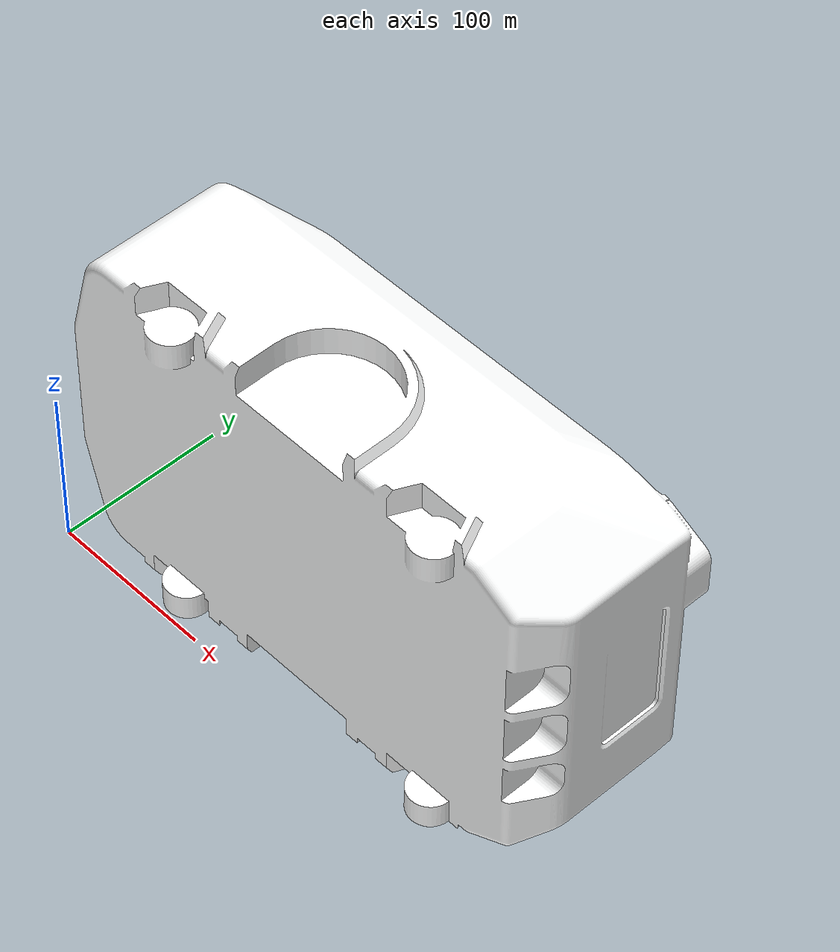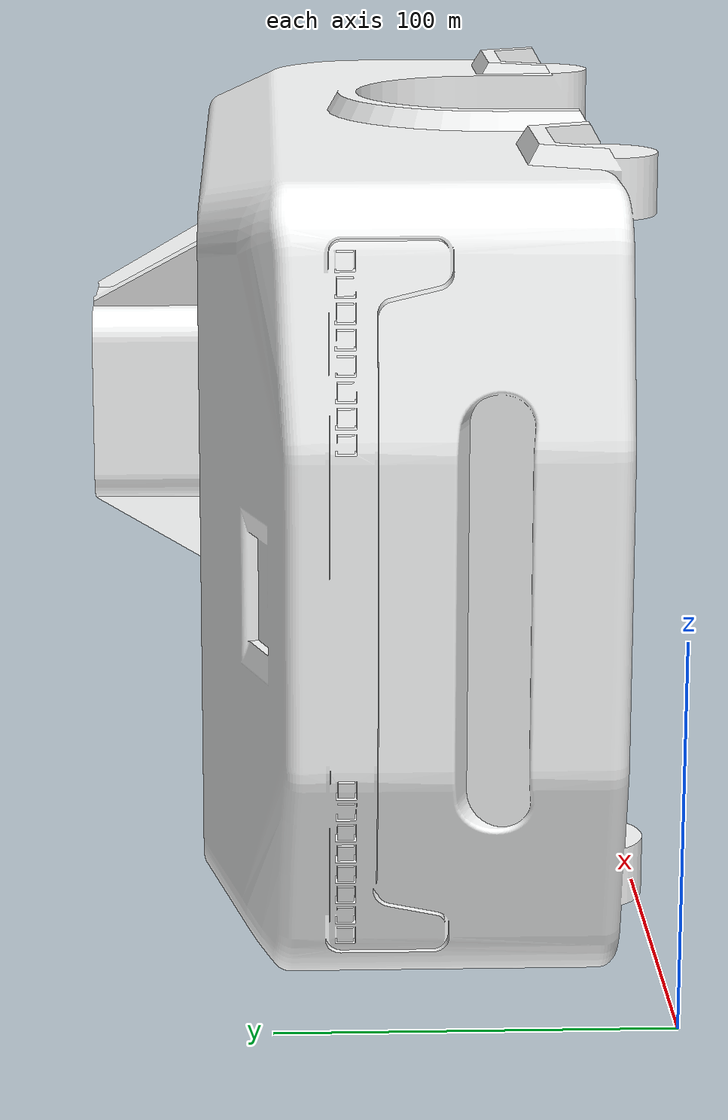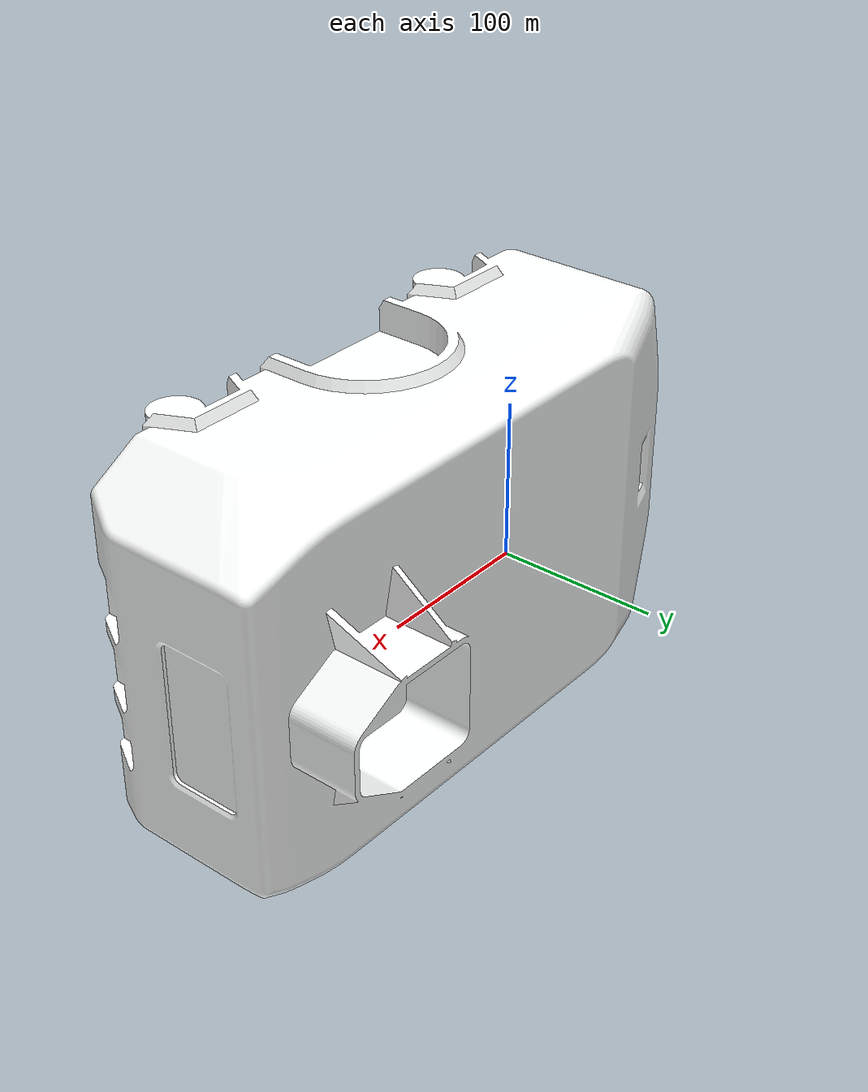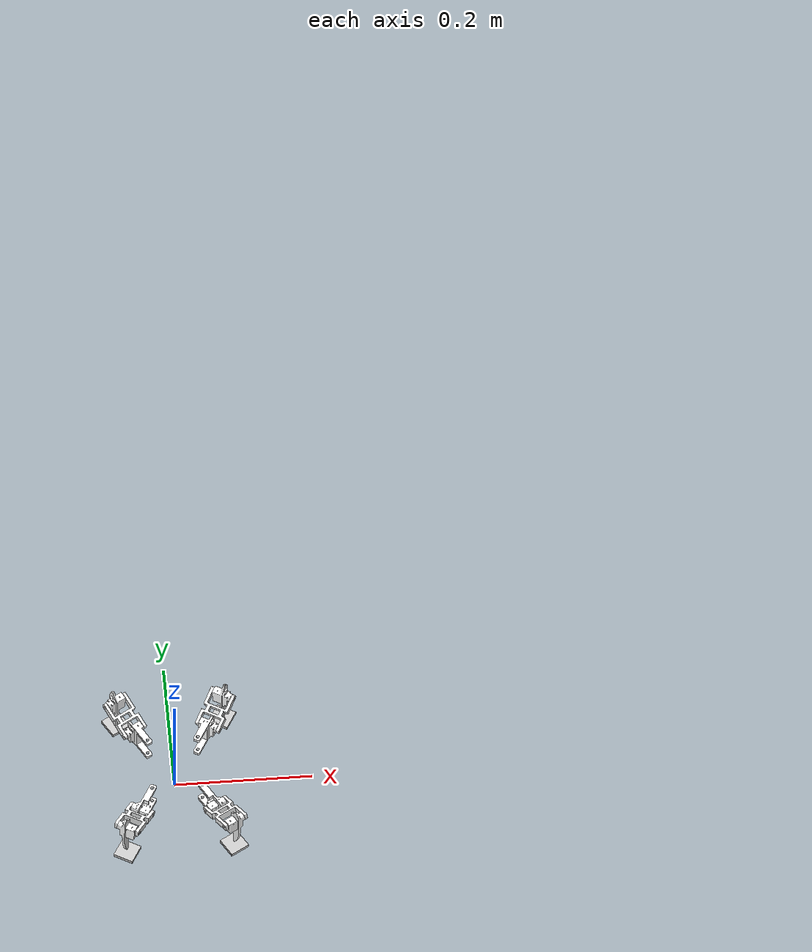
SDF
<?xml version="1.0" encoding="utf-8"?>
<sdf version='1.11'>
  <model name='peter1' canonical_link = 'body'>

    <frame name="lidar_frame" attached_to='body'>
          <pose>0 0 0.15 0 0 3.1415926535</pose>
    </frame>

    <frame name="camera_frame" attached_to='body'>
          <pose>0 0 0.05 0 0 3.1415926</pose>
    </frame>

    <link name='body'>
      <inertial>
        <pose>0.0022555536637576899 0.00133065518558914 0.043064731379226201 0 0 0</pose>
        <mass>0.063478029760084195</mass>
        <inertia>
          <ixx>7.9230379603712002e-05</ixx>
          <ixy>2.9482940315218001e-07</ixy>
          <ixz>-1.20685983267543e-08</ixz>
          <iyy>7.1253492093192099e-05</iyy>
          <iyz>1.2420643100907299e-08</iyz>
          <izz>0.00014631818171768199</izz>
        </inertia>
      </inertial>
      <collision name='body_collision'>
        <pose>0 0 0 0 0 0</pose>
        <geometry>
          <mesh>
            <scale>1 1 1</scale>
            <uri>model://description/meshes/body.STL</uri>
          </mesh>
        </geometry>
          <surface>
            <friction>
              <ode>
               <mu>1</mu>
               <mu2>1</mu2>
              </ode>
            </friction>
            <bounce/>
            <contact/>
          </surface>
      </collision>
      <visual name='body_visual'>
        <pose>0 0 0 0 0 0</pose>
        <geometry>
          <mesh>
            <scale>1 1 1</scale>
            <uri>model://description/meshes/body.STL</uri>
          </mesh>
        </geometry>
        <material>
          <diffuse>0.995098054 1 1 1</diffuse>
          <ambient>0.995098054 1 1 1</ambient>
        </material>
      </visual>

 <sensor name='gpu_lidar' type='gpu_lidar'>"
          <pose relative_to='lidar_frame'>0 0 0 0 0 0</pose>
          <topic>lidar_scan</topic>
          <update_rate>10</update_rate>
          <ray>
              <scan>
                  <horizontal>
                      <samples>720</samples>
                      <resolution>1</resolution>
                      <min_angle>-0.785</min_angle>
                      <max_angle>0.785</max_angle>
                  </horizontal>
                  <vertical>
                      <samples>1</samples>
                      <resolution>0.01</resolution>
                      <min_angle>0</min_angle>
                      <max_angle>0</max_angle>
                  </vertical>
              </scan>
              <range>
                  <min>0.05</min>
                  <max>10.0</max>
                  <resolution>0.01</resolution>
              </range>
          </ray>
          <always_on>1</always_on>
          <visualize>true</visualize>
      </sensor>
      <sensor name="boundingbox_camera" type="boundingbox_camera">
         <pose relative_to='camera_frame'>0 0 0 0 0 0</pose>
         <topic>boxes</topic>
         <camera>
           <box_type>2d</box_type>
           <horizontal_fov>1.047</horizontal_fov>
           <image>
             <width>1280</width>
             <height>720</height>
           </image>
           <clip>
             <near>0.1</near>
             <far>10</far>
           </clip>
         </camera>
         <always_on>1</always_on>
         <update_rate>30</update_rate>
         <visualize>true</visualize>
       </sensor>

    </link>

    <joint name='jlf1' type='revolute'>
      <pose relative_to='body'>-0.04 -0.04 0.04 -1.5708 5.5511151231257827e-17 -0.52359999999999995</pose>
      <parent>body</parent>
      <child>llf1</child>
      <axis>
        <xyz>0 1 0</xyz>
        <limit>
          <lower>-3.14</lower>
          <upper>3.14</upper>
          <effort>10</effort>
          <velocity>10</velocity>
        </limit>
        <dynamics>
          <spring_reference>0</spring_reference>
          <spring_stiffness>0</spring_stiffness>
        </dynamics>
      </axis>
    </joint>
    <link name='llf1'>
      <pose relative_to='jlf1'>0 0 0 0 0 0</pose>
      <inertial>
        <pose>0.00286542457 -0.001117447 -0.027575894 0 0 0</pose>
        <mass>0.012789728747716301</mass>
        <inertia>
          <ixx>2.8085225283823598e-06</ixx>
          <ixy>-1.22116927896592e-08</ixy>
          <ixz>-8.7286357197039904e-08</ixz>
          <iyy>1.9479276383099401e-06</iyy>
          <iyz>-2.2831986328942301e-08</iyz>
          <izz>1.8524298404201401e-06</izz>
        </inertia>
      </inertial>
      <collision name='llf1_collision'>
        <pose>0 0 0 0 0 0</pose>
        <geometry>
          <mesh>
            <scale>1 1 1</scale>
            <uri>model://description/meshes/llf1.STL</uri>
          </mesh>
        </geometry>
          <surface>
            <friction>
              <ode>
               <mu>1</mu>
               <mu2>1</mu2>
              </ode>
            </friction>
            <bounce/>
            <contact/>
          </surface>
      </collision>
      <visual name='llf1_visual'>
        <pose>0 0 0 0 0 0</pose>
        <geometry>
          <mesh>
            <scale>1 1 1</scale>
            <uri>model://description/meshes/llf1.STL</uri>
          </mesh>
        </geometry>
        <material>
          <diffuse>0.995098054 1 1 1</diffuse>
          <ambient>0.995098054 1 1 1</ambient>
        </material>
      </visual>
    </link>
    <joint name='jlf2' type='revolute'>
      <pose relative_to='llf1'>0.0022300000000000002 -0.0058999999999999999 -0.0332 0.34907000000000005 2.1175823681357508e-22 3.1415853071795872</pose>
      <parent>llf1</parent>
      <child>llf2</child>
      <axis>
        <xyz>1 0 0</xyz>
        <limit>
          <lower>-3.14</lower>
          <upper>3.14</upper>
          <effort>10</effort>
          <velocity>10</velocity>
        </limit>
        <dynamics>
          <spring_reference>0</spring_reference>
          <spring_stiffness>0</spring_stiffness>
        </dynamics>
      </axis>
    </joint>
    <link name='llf2'>
      <pose relative_to='jlf2'>0 0 0 0 0 0</pose>
      <inertial>
        <pose>0 3.46944695195361e-18 -0.024259718544271999 0 0 0</pose>
        <mass>0.0071256681620003801</mass>
        <inertia>
          <ixx>1.51184436411063e-06</ixx>
          <ixy>9.9261673506363302e-22</ixy>
          <ixz>4.7645603283054403e-22</ixz>
          <iyy>2.8950464625635802e-06</iyy>
          <iyz>2.64697796016969e-22</iyz>
          <izz>1.50597424566293e-06</izz>
        </inertia>
      </inertial>
      <collision name='llf2_collision'>
        <pose>0 0 0 0 0 0</pose>
        <geometry>
          <mesh>
            <scale>1 1 1</scale>
            <uri>model://description/meshes/llf2.STL</uri>
          </mesh>
        </geometry>
          <surface>
            <friction>
              <ode>
               <mu>1</mu>
               <mu2>1</mu2>
              </ode>
            </friction>
            <bounce/>
            <contact/>
          </surface>
      </collision>
      <visual name='llf2_visual'>
        <pose>0 0 0 0 0 0</pose>
        <geometry>
          <mesh>
            <scale>1 1 1</scale>
            <uri>model://description/meshes/llf2.STL</uri>
          </mesh>
        </geometry>
        <material>
          <diffuse>0.995098054 1 1 1</diffuse>
          <ambient>0.995098054 1 1 1</ambient>
        </material>
      </visual>
    </link>
    <joint name='jlf3' type='revolute'>
      <pose relative_to='llf2'>-0.00027 6.2114999999999997e-05 -0.050126999999999998 1.2401 0 0</pose>
      <parent>llf2</parent>
      <child>llf3</child>
      <axis>
        <xyz>-1 0 0</xyz>
        <limit>
          <lower>-3.14</lower>
          <upper>3.14</upper>
          <effort>10</effort>
          <velocity>10</velocity>
        </limit>
        <dynamics>
          <spring_reference>0</spring_reference>
          <spring_stiffness>0</spring_stiffness>
        </dynamics>
      </axis>
    </joint>
    <link name='llf3'>
      <pose relative_to='jlf3'>0 0 0 0 0 0</pose>
      <inertial>
        <pose>0.00052240477499151299 -0.00014146217495314401 0.0079297542860836193 0 0 0</pose>
        <mass>0.0099422645031376194</mass>
        <inertia>
          <ixx>1.9963726602804399e-06</ixx>
          <ixy>4.0330485793124704e-09</ixy>
          <ixz>-4.3733666249029598e-08</ixz>
          <iyy>2.2864873535189799e-06</iyy>
          <iyz>-1.38843083458551e-09</iyz>
          <izz>6.0776447329995005e-07</izz>
        </inertia>
      </inertial>
      <collision name='llf3_collision'>
        <pose>0 0 0 0 0 0</pose>
        <geometry>
          <mesh>
            <scale>1 1 1</scale>
            <uri>model://description/meshes/llf3.STL</uri>
          </mesh>
        </geometry>
          <surface>
            <friction>
              <ode>
               <mu>1</mu>
               <mu2>1</mu2>
              </ode>
            </friction>
            <bounce/>
            <contact/>
          </surface>
      </collision>
      <visual name='llf3_visual'>
        <pose>0 0 0 0 0 0</pose>
        <geometry>
          <mesh>
            <scale>1 1 1</scale>
            <uri>model://description/meshes/llf3.STL</uri>
          </mesh>
        </geometry>
        <material>
          <diffuse>0.995098054 1 1 1</diffuse>
          <ambient>0.995098054 1 1 1</ambient>
        </material>
      </visual>
    </link>
    <joint name='jlr1' type='revolute'>
      <pose relative_to='body'>0.04 0.04 0.04 -1.5708000000000002 -2.7755575615628914e-17 2.6179999999999999</pose>
      <parent>body</parent>
      <child>llr1</child>
      <axis>
        <xyz>0 1 0</xyz>
        <limit>
          <lower>-3.14</lower>
          <upper>3.14</upper>
          <effort>10</effort>
          <velocity>10</velocity>
        </limit>
        <dynamics>
          <spring_reference>0</spring_reference>
          <spring_stiffness>0</spring_stiffness>
        </dynamics>
      </axis>
    </joint>
    <link name='llr1'>
      <pose relative_to='jlr1'>0 0 0 0 0 0</pose>
      <inertial>
        <pose>0.00286542457 -0.001117447 -0.027575894 0 0 0</pose>
        <mass>0.0127897287485531</mass>
        <inertia>
          <ixx>2.8085225284554198e-06</ixx>
          <ixy>-1.22116928234475e-08</ixy>
          <ixz>-8.72863572603713e-08</ixz>
          <iyy>1.9479276384354398e-06</iyy>
          <iyz>-2.2831986359843301e-08</iyz>
          <izz>1.8524298405056999e-06</izz>
        </inertia>
      </inertial>
      <collision name='llr1_collision'>
        <pose>0 0 0 0 0 0</pose>
        <geometry>
          <mesh>
            <scale>1 1 1</scale>
            <uri>model://description/meshes/llr1.STL</uri>
          </mesh>
        </geometry>
          <surface>
            <friction>
              <ode>
               <mu>1</mu>
               <mu2>1</mu2>
              </ode>
            </friction>
            <bounce/>
            <contact/>
          </surface>
      </collision>
      <visual name='llr1_visual'>
        <pose>0 0 0 0 0 0</pose>
        <geometry>
          <mesh>
            <scale>1 1 1</scale>
            <uri>model://description/meshes/llr1.STL</uri>
          </mesh>
        </geometry>
        <material>
          <diffuse>0.995098054 1 1 1</diffuse>
          <ambient>0.995098054 1 1 1</ambient>
        </material>
      </visual>
    </link>
    <joint name='jlr2' type='revolute'>
      <pose relative_to='llr1'>0.0022300000000000002 -0.0058999999999999999 -0.0332 0.34907000000000005 2.1175823681357508e-22 3.1415853071795872</pose>
      <parent>llr1</parent>
      <child>llr2</child>
      <axis>
        <xyz>1 0 0</xyz>
        <limit>
          <lower>-3.14</lower>
          <upper>3.14</upper>
          <effort>10</effort>
          <velocity>10</velocity>
        </limit>
        <dynamics>
          <spring_reference>0</spring_reference>
          <spring_stiffness>0</spring_stiffness>
        </dynamics>
      </axis>
    </joint>
    <link name='llr2'>
      <pose relative_to='jlr2'>0 0 0 0 0 0</pose>
      <inertial>
        <pose>-6.9388939039072299e-18 3.46944695195361e-18 -0.024259718544271999 0 0 0</pose>
        <mass>0.0071256681620003801</mass>
        <inertia>
          <ixx>1.51184436411063e-06</ixx>
          <ixy>7.9409338805090704e-22</ixy>
          <ixz>-5.2939559203393795e-23</ixz>
          <iyy>2.8950464625635802e-06</iyy>
          <iyz>1.8528845721187801e-22</iyz>
          <izz>1.5059742456629201e-06</izz>
        </inertia>
      </inertial>
      <collision name='llr2_collision'>
        <pose>0 0 0 0 0 0</pose>
        <geometry>
          <mesh>
            <scale>1 1 1</scale>
            <uri>model://description/meshes/llr2.STL</uri>
          </mesh>
        </geometry>
          <surface>
            <friction>
              <ode>
               <mu>1</mu>
               <mu2>1</mu2>
              </ode>
            </friction>
            <bounce/>
            <contact/>
          </surface>
      </collision>
      <visual name='llr2_visual'>
        <pose>0 0 0 0 0 0</pose>
        <geometry>
          <mesh>
            <scale>1 1 1</scale>
            <uri>model://description/meshes/llr2.STL</uri>
          </mesh>
        </geometry>
        <material>
          <diffuse>0.995098054 1 1 1</diffuse>
          <ambient>0.995098054 1 1 1</ambient>
        </material>
      </visual>
    </link>
    <joint name='jlr3' type='revolute'>
      <pose relative_to='llr2'>-0.00044999999999999999 5.9766999999999999e-05 -0.050127999999999999 1.2216999999999998 0 0</pose>
      <parent>llr2</parent>
      <child>llr3</child>
      <axis>
        <xyz>-1 0 0</xyz>
        <limit>
          <lower>-3.14</lower>
          <upper>3.14</upper>
          <effort>10</effort>
          <velocity>10</velocity>
        </limit>
        <dynamics>
          <spring_reference>0</spring_reference>
          <spring_stiffness>0</spring_stiffness>
        </dynamics>
      </axis>
    </joint>
    <link name='llr3'>
      <pose relative_to='jlr3'>0 0 0 0 0 0</pose>
      <inertial>
        <pose>0.00052240466158130804 -0.000141462048715624 0.0079297542772835093 0 0 0</pose>
        <mass>0.0099422642876608892</mass>
        <inertia>
          <ixx>1.9963727548235902e-06</ixx>
          <ixy>4.0330423282316097e-09</ixy>
          <ixz>-4.3733671753696498e-08</ixz>
          <iyy>2.2864874548568501e-06</iyy>
          <iyz>-1.3884479500935699e-09</iyz>
          <izz>6.0776445098594797e-07</izz>
        </inertia>
      </inertial>
      <collision name='llr3_collision'>
        <pose>0 0 0 0 0 0</pose>
        <geometry>
          <mesh>
            <scale>1 1 1</scale>
            <uri>model://description/meshes/llr3.STL</uri>
          </mesh>
        </geometry>
          <surface>
            <friction>
              <ode>
               <mu>1</mu>
               <mu2>1</mu2>
              </ode>
            </friction>
            <bounce/>
            <contact/>
          </surface>
      </collision>
      <visual name='llr3_visual'>
        <pose>0 0 0 0 0 0</pose>
        <geometry>
          <mesh>
            <scale>1 1 1</scale>
            <uri>model://description/meshes/llr3.STL</uri>
          </mesh>
        </geometry>
        <material>
          <diffuse>0.995098054 1 1 1</diffuse>
          <ambient>0.995098054 1 1 1</ambient>
        </material>
      </visual>
    </link>
    <joint name='jrf1' type='revolute'>
      <pose relative_to='body'>-0.04 0.04 0.04 -1.5708 -5.5511151231257827e-17 0.52359999999999995</pose>
      <parent>body</parent>
      <child>lrf1</child>
      <axis>
        <xyz>0 1 0</xyz>
        <limit>
          <lower>-3.14</lower>
          <upper>3.14</upper>
          <effort>10</effort>
          <velocity>10</velocity>
        </limit>
        <dynamics>
          <spring_reference>0</spring_reference>
          <spring_stiffness>0</spring_stiffness>
        </dynamics>
      </axis>
    </joint>
    <link name='lrf1'>
      <pose relative_to='jrf1'>0 0 0 0 0 0</pose>
      <inertial>
        <pose>0.00286542457 -0.001117447 0.027575894 0 0 0</pose>
        <mass>0.012789727077819699</mass>
        <inertia>
          <ixx>2.8085225922082198e-06</ixx>
          <ixy>-1.2211785859690101e-08</ixy>
          <ixz>8.7286419548063804e-08</ixz>
          <iyy>1.9479275047790999e-06</iyy>
          <iyz>2.28320672404181e-08</iyz>
          <izz>1.8524299282918799e-06</izz>
        </inertia>
      </inertial>
      <collision name='lrf1_collision'>
        <pose>0 0 0 0 0 0</pose>
        <geometry>
          <mesh>
            <scale>1 1 1</scale>
            <uri>model://description/meshes/lrf1.STL</uri>
          </mesh>
        </geometry>
          <surface>
            <friction>
              <ode>
               <mu>1</mu>
               <mu2>1</mu2>
              </ode>
            </friction>
            <bounce/>
            <contact/>
          </surface>
      </collision>
      <visual name='lrf1_visual'>
        <pose>0 0 0 0 0 0</pose>
        <geometry>
          <mesh>
            <scale>1 1 1</scale>
            <uri>model://description/meshes/lrf1.STL</uri>
          </mesh>
        </geometry>
        <material>
          <diffuse>0.995098054 1 1 1</diffuse>
          <ambient>0.995098054 1 1 1</ambient>
        </material>
      </visual>
    </link>
    <joint name='jrf2' type='revolute'>
      <pose relative_to='lrf1'>0.0020500000000000002 -0.0058999999999999999 0.0332 2.7925 -2.1175823681357508e-22 3.1415853071795872</pose>
      <parent>lrf1</parent>
      <child>lrf2</child>
      <axis>
        <xyz>-1 0 0</xyz>
        <limit>
          <lower>-3.14</lower>
          <upper>3.14</upper>
          <effort>10</effort>
          <velocity>10</velocity>
        </limit>
        <dynamics>
          <spring_reference>0</spring_reference>
          <spring_stiffness>0</spring_stiffness>
        </dynamics>
      </axis>
    </joint>
    <link name='lrf2'>
      <pose relative_to='jrf2'>0 0 0 0 0 0</pose>
      <inertial>
        <pose>0 -6.9388939039072299e-18 -0.024259718544271999 0 0 0</pose>
        <mass>0.0071256681620003896</mass>
        <inertia>
          <ixx>1.51184436411063e-06</ixx>
          <ixy>-3.4410713482205998e-22</ixy>
          <ixz>1.2705494208814499e-21</ixz>
          <iyy>2.8950464625635899e-06</iyy>
          <iyz>-4.2351647362714998e-22</iyz>
          <izz>1.50597424566293e-06</izz>
        </inertia>
      </inertial>
      <collision name='lrf2_collision'>
        <pose>0 0 0 0 0 0</pose>
        <geometry>
          <mesh>
            <scale>1 1 1</scale>
            <uri>model://description/meshes/lrf2.STL</uri>
          </mesh>
        </geometry>
          <surface>
            <friction>
              <ode>
               <mu>1</mu>
               <mu2>1</mu2>
              </ode>
            </friction>
            <bounce/>
            <contact/>
          </surface>
      </collision>
      <visual name='lrf2_visual'>
        <pose>0 0 0 0 0 0</pose>
        <geometry>
          <mesh>
            <scale>1 1 1</scale>
            <uri>model://description/meshes/lrf2.STL</uri>
          </mesh>
        </geometry>
        <material>
          <diffuse>0.995098054 1 1 1</diffuse>
          <ambient>0.995098054 1 1 1</ambient>
        </material>
      </visual>
    </link>
    <joint name='jrf3' type='revolute'>
      <pose relative_to='lrf2'>-0.00044999999999999999 -5.9766999999999999e-05 -0.050127999999999999 1.9198999999999999 0 0</pose>
      <parent>lrf2</parent>
      <child>lrf3</child>
      <axis>
        <xyz>1 0 0</xyz>
        <limit>
          <lower>-3.14</lower>
          <upper>3.14</upper>
          <effort>10</effort>
          <velocity>10</velocity>
        </limit>
        <dynamics>
          <spring_reference>0</spring_reference>
          <spring_stiffness>0</spring_stiffness>
        </dynamics>
      </axis>
    </joint>
    <link name='lrf3'>
      <pose relative_to='jrf3'>0 0 0 0 0 0</pose>
      <inertial>
        <pose>0.00052239841423967802 -0.000141459359524615 -0.0079297590963933497 0 0 0</pose>
        <mass>0.0099422546587472193</mass>
        <inertia>
          <ixx>1.9963740226929001e-06</ixx>
          <ixy>4.0329498722230403e-09</ixy>
          <ixz>4.3734180051889302e-08</ixz>
          <iyy>2.28648720039974e-06</iyy>
          <iyz>1.3881003758252501e-09</iyz>
          <izz>6.0776469273260595e-07</izz>
        </inertia>
      </inertial>
      <collision name='lrf3_collision'>
        <pose>0 0 0 0 0 0</pose>
        <geometry>
          <mesh>
            <scale>1 1 1</scale>
            <uri>model://description/meshes/lrf3.STL</uri>
          </mesh>
        </geometry>
          <surface>
            <friction>
              <ode>
               <mu>1</mu>
               <mu2>1</mu2>
              </ode>
            </friction>
            <bounce/>
            <contact/>
          </surface>
      </collision>
      <visual name='lrf3_visual'>
        <pose>0 0 0 0 0 0</pose>
        <geometry>
          <mesh>
            <scale>1 1 1</scale>
            <uri>model://description/meshes/lrf3.STL</uri>
          </mesh>
        </geometry>
        <material>
          <diffuse>0.995098054 1 1 1</diffuse>
          <ambient>0.995098054 1 1 1</ambient>
        </material>
      </visual>
    </link>
    <joint name='jrr1' type='revolute'>
      <pose relative_to='body'>0.04 -0.04 0.04 -1.5708000000000002 2.7755575615628914e-17 -2.6179999999999999</pose>
      <parent>body</parent>
      <child>lrr1</child>
      <axis>
        <xyz>0 1 0</xyz>
        <limit>
          <lower>-3.14</lower>
          <upper>3.14</upper>
          <effort>10</effort>
          <velocity>10</velocity>
        </limit>
        <dynamics>
          <spring_reference>0</spring_reference>
          <spring_stiffness>0</spring_stiffness>
        </dynamics>
      </axis>
    </joint>
    <link name='lrr1'>
      <pose relative_to='jrr1'>0 0 0 0 0 0</pose>
      <inertial>
        <pose>0.00286542457 -0.001117447 0.027575894 0 0 0</pose>
        <mass>0.012789727077659701</mass>
        <inertia>
          <ixx>2.80852259219697e-06</ixx>
          <ixy>-1.22117858410542e-08</ixy>
          <ixz>8.7286419553580596e-08</ixz>
          <iyy>1.94792750477442e-06</iyy>
          <iyz>2.2832067239878298e-08</iyz>
          <izz>1.8524299282579899e-06</izz>
        </inertia>
      </inertial>
      <collision name='lrr1_collision'>
        <pose>0 0 0 0 0 0</pose>
        <geometry>
          <mesh>
            <scale>1 1 1</scale>
            <uri>model://description/meshes/lrr1.STL</uri>
          </mesh>
        </geometry>
          <surface>
            <friction>
              <ode>
               <mu>1</mu>
               <mu2>1</mu2>
              </ode>
            </friction>
            <bounce/>
            <contact/>
          </surface>
      </collision>
      <visual name='lrr1_visual'>
        <pose>0 0 0 0 0 0</pose>
        <geometry>
          <mesh>
            <scale>1 1 1</scale>
            <uri>model://description/meshes/lrr1.STL</uri>
          </mesh>
        </geometry>
        <material>
          <diffuse>0.995098054 1 1 1</diffuse>
          <ambient>0.995098054 1 1 1</ambient>
        </material>
      </visual>
    </link>
    <joint name='jrr2' type='revolute'>
      <pose relative_to='lrr1'>0.0020500000000000002 -0.0058999999999999999 0.0332 -2.7925 0 0</pose>
      <parent>lrr1</parent>
      <child>lrr2</child>
      <axis>
        <xyz>1 0 0</xyz>
        <limit>
          <lower>-3.14</lower>
          <upper>3.14</upper>
          <effort>10</effort>
          <velocity>10</velocity>
        </limit>
        <dynamics>
          <spring_reference>0</spring_reference>
          <spring_stiffness>0</spring_stiffness>
        </dynamics>
      </axis>
    </joint>
    <link name='lrr2'>
      <pose relative_to='jrr2'>0 0 0 0 0 0</pose>
      <inertial>
        <pose>6.9388939039072299e-18 -6.9388939039072299e-18 -0.024259718544271999 0 0 0</pose>
        <mass>0.0071256681620003896</mass>
        <inertia>
          <ixx>1.51184436411063e-06</ixx>
          <ixy>-6.3527471044072497e-22</ixy>
          <ixz>-1.2705494208814499e-21</ixz>
          <iyy>2.8950464625635899e-06</iyy>
          <iyz>2.64697796016969e-22</iyz>
          <izz>1.50597424566293e-06</izz>
        </inertia>
      </inertial>
      <collision name='lrr2_collision'>
        <pose>0 0 0 0 0 0</pose>
        <geometry>
          <mesh>
            <scale>1 1 1</scale>
            <uri>model://description/meshes/lrr2.STL</uri>
          </mesh>
        </geometry>
          <surface>
            <friction>
              <ode>
               <mu>1</mu>
               <mu2>1</mu2>
              </ode>
            </friction>
            <bounce/>
            <contact/>
          </surface>
      </collision>
      <visual name='lrr2_visual'>
        <pose>0 0 0 0 0 0</pose>
        <geometry>
          <mesh>
            <scale>1 1 1</scale>
            <uri>model://description/meshes/lrr2.STL</uri>
          </mesh>
        </geometry>
        <material>
          <diffuse>0.995098054 1 1 1</diffuse>
          <ambient>0.995098054 1 1 1</ambient>
        </material>
      </visual>
    </link>
    <joint name='jrr3' type='revolute'>
      <pose relative_to='lrr2'>0.00044999999999999999 5.9766999999999999e-05 -0.050127999999999999 1.9198999999999999 -4.2351647362715017e-22 3.1415853071795872</pose>
      <parent>lrr2</parent>
      <child>lrr3</child>
      <axis>
        <xyz>1 0 0</xyz>
        <limit>
          <lower>-3.14</lower>
          <upper>3.14</upper>
          <effort>10</effort>
          <velocity>100</velocity>
        </limit>
        <dynamics>
          <spring_reference>0</spring_reference>
          <spring_stiffness>0</spring_stiffness>
        </dynamics>
      </axis>
    </joint>
    <link name='lrr3'>
      <pose relative_to='jrr3'>0 0 0 0 0 0</pose>
      <inertial>
        <pose>0.00052239841485524801 -0.00014145935954890099 -0.00792975909575863 0 0 0</pose>
        <mass>0.0099422546595867908</mass>
        <inertia>
          <ixx>1.99637402276075e-06</ixx>
          <ixy>4.0329498745485196e-09</ixy>
          <ixz>4.3734179997038598e-08</ixz>
          <iyy>2.2864872005159102e-06</iyy>
          <iyz>1.38810037893004e-09</iyz>
          <izz>6.0776469278123602e-07</izz>
        </inertia>
      </inertial>
      <collision name='lrr3_collision'>
        <pose>0 0 0 0 0 0</pose>
        <geometry>
          <mesh>
            <scale>1 1 1</scale>
            <uri>model://description/meshes/lrr3.STL</uri>
          </mesh>
        </geometry>
          <surface>
            <friction>
              <ode>
               <mu>1</mu>
               <mu2>1</mu2>
              </ode>
            </friction>
            <bounce/>
            <contact/>
          </surface>
      </collision>
      <visual name='lrr3_visual'>
        <pose>0 0 0 0 0 0</pose>
        <geometry>
          <mesh>
            <scale>1 1 1</scale>
            <uri>model://description/meshes/lrr3.STL</uri>
          </mesh>
        </geometry>
        <material>
          <diffuse>0.995098054 1 1 1</diffuse>
          <ambient>0.995098054 1 1 1</ambient>
        </material>
      </visual>
    </link>

  <joint name='fit1' type='revolute'>
  <pose relative_to='llf3'>0 0 0.06 0 0 0</pose>
  <parent>llf3</parent>
  <child>fitl1</child>
  <axis>
    <xyz>1 0 0</xyz>
    <limit>
      <lower>-3.14</lower>
      <upper>3.14</upper>
      <effort>100</effort>
      <velocity>1</velocity>
    </limit>
    <dynamics>
      <spring_reference>0</spring_reference>
      <spring_stiffness>0</spring_stiffness>
    </dynamics>
  </axis>
</joint>
<link name='fitl1'>
  <pose relative_to='fit1'>0 0 0 0 0 0</pose>
  <inertial>
    <pose>0 0 0 0 0 0</pose>
    <mass>0.01</mass>
    <inertia>
      <ixx>2.083e-06</ixx>
      <ixy>0.0</ixy>
      <ixz>0.0</ixz>
      <iyy>2.083e-06</iyy>
      <iyz>0.0</iyz>
      <izz>2.083e-06</izz>
    </inertia>
  </inertial>
  <collision name='fit1_collision'>
    <pose>0 0 0 0 0 0</pose>
    <geometry>
      <box>
        <size>0.030 0.030 0.005</size>
      </box>
    </geometry>
    <surface>
      <friction>
        <ode>
          <mu>1</mu>
          <mu2>1</mu2>
        </ode>
      </friction>
      <bounce/>
      <contact/>
    </surface>
  </collision>
  <visual name='fit1_visual'>
    <pose>0 0 0 0 0 0</pose>
    <geometry>
      <box>
        <size>0.030 0.030 0.005</size>
      </box>
    </geometry>
    <material>
      <diffuse>0.8 0.8 0.8 1</diffuse>
      <ambient>0.8 0.8 0.8 1</ambient>
    </material>
  </visual>
</link>

<joint name='fit2' type='revolute'>
  <pose relative_to='lrf3'>0 0 -0.06 0 0 0</pose>
  <parent>lrf3</parent>
  <child>fitl2</child>
  <axis>
    <xyz>1 0 0</xyz>
    <limit>
      <lower>-3.14</lower>
      <upper>3.14</upper>
      <effort>100</effort>
      <velocity>1</velocity>
    </limit>
    <dynamics>
      <spring_reference>0</spring_reference>
      <spring_stiffness>0</spring_stiffness>
    </dynamics>
  </axis>
</joint>
<link name='fitl2'>
  <pose relative_to='fit2'>0 0 0 0 0 0</pose>
  <inertial>
    <pose>0 0 0 0 0 0</pose>
    <mass>0.01</mass>
    <inertia>
      <ixx>2.083e-06</ixx>
      <ixy>0.0</ixy>
      <ixz>0.0</ixz>
      <iyy>2.083e-06</iyy>
      <iyz>0.0</iyz>
      <izz>2.083e-06</izz>
    </inertia>
  </inertial>
  <collision name='fit2_collision'>
    <pose>0 0 0 0 0 0</pose>
    <geometry>
      <box>
        <size>0.030 0.030 0.005</size>
      </box>
    </geometry>
    <surface>
      <friction>
        <ode>
          <mu>1</mu>
          <mu2>1</mu2>
        </ode>
      </friction>
      <bounce/>
      <contact/>
    </surface>
  </collision>
  <visual name='fit2_visual'>
    <pose>0 0 0 0 0 0</pose>
    <geometry>
      <box>
        <size>0.030 0.030 0.005</size>
      </box>
    </geometry>
    <material>
      <diffuse>0.8 0.8 0.8 1</diffuse>
      <ambient>0.8 0.8 0.8 1</ambient>
    </material>
  </visual>
</link>

<joint name='fit3' type='revolute'>
  <pose relative_to='llr3'>0 0 0.06 0 0 0</pose>
  <parent>llr3</parent>
  <child>fitl3</child>
  <axis>
    <xyz>1 0 0</xyz>
    <limit>
      <lower>-3.14</lower>
      <upper>3.14</upper>
      <effort>100</effort>
      <velocity>1</velocity>
    </limit>
    <dynamics>
      <spring_reference>0</spring_reference>
      <spring_stiffness>0</spring_stiffness>
    </dynamics>
  </axis>
</joint>
<link name='fitl3'>
  <pose relative_to='fit3'>0 0 0 0 0 0</pose>
  <inertial>
    <pose>0 0 0 0 0 0</pose>
    <mass>0.01</mass>
    <inertia>
      <ixx>2.083e-06</ixx>
      <ixy>0.0</ixy>
      <ixz>0.0</ixz>
      <iyy>2.083e-06</iyy>
      <iyz>0.0</iyz>
      <izz>2.083e-06</izz>
    </inertia>
  </inertial>
  <collision name='fit3_collision'>
    <pose>0 0 0 0 0 0</pose>
    <geometry>
      <box>
        <size>0.030 0.030 0.005</size>
      </box>
    </geometry>
    <surface>
      <friction>
        <ode>
          <mu>1</mu>
          <mu2>1</mu2>
        </ode>
      </friction>
      <bounce/>
      <contact/>
    </surface>
  </collision>
  <visual name='fit3_visual'>
    <pose>0 0 0 0 0 0</pose>
    <geometry>
      <box>
        <size>0.030 0.030 0.005</size>
      </box>
    </geometry>
    <material>
      <diffuse>0.8 0.8 0.8 1</diffuse>
      <ambient>0.8 0.8 0.8 1</ambient>
    </material>
  </visual>
</link>

<joint name='fit4' type='revolute'>
  <pose relative_to='lrr3'>0 0 -0.06 0 0 0</pose>
  <parent>lrr3</parent>
  <child>fitl4</child>
  <axis>
    <xyz>1 0 0</xyz>
    <limit>
      <lower>-3.14</lower>
      <upper>3.14</upper>
      <effort>100</effort>
      <velocity>1</velocity>
    </limit>
    <dynamics>
      <spring_reference>0</spring_reference>
      <spring_stiffness>0</spring_stiffness>
    </dynamics>
  </axis>
</joint>
<link name='fitl4'>
  <pose relative_to='fit4'>0 0 0 0 0 0</pose>
  <inertial>
    <pose>0 0 0 0 0 0</pose>
    <mass>0.01</mass>
    <inertia>
      <ixx>2.083e-06</ixx>
      <ixy>0.0</ixy>
      <ixz>0.0</ixz>
      <iyy>2.083e-06</iyy>
      <iyz>0.0</iyz>
      <izz>2.083e-06</izz>
    </inertia>
  </inertial>
  <collision name='fit4_collision'>
    <pose>0 0 0 0 0 0</pose>
    <geometry>
      <box>
        <size>0.030 0.030 0.005</size>
      </box>
    </geometry>
    <surface>
      <friction>
        <ode>
          <mu>1</mu>
          <mu2>1</mu2>
        </ode>
      </friction>
      <bounce/>
      <contact/>
    </surface>
  </collision>
  <visual name='fit4_visual'>
    <pose>0 0 0 0 0 0</pose>
    <geometry>
      <box>
        <size>0.030 0.030 0.005</size>
      </box>
    </geometry>
    <material>
      <diffuse>0.8 0.8 0.8 1</diffuse>
      <ambient>0.8 0.8 0.8 1</ambient>
    </material>
  </visual>
</link>

    <plugin
      filename="gz-sim-joint-state-publisher-system"
      name="gz::sim::systems::JointStatePublisher">
      <joint_name>jlf1</joint_name>
    </plugin>
    <plugin
      filename="gz-sim-joint-state-publisher-system"
      name="gz::sim::systems::JointStatePublisher">
      <joint_name>jlf2</joint_name>
    </plugin>
        <plugin
      filename="gz-sim-joint-state-publisher-system"
      name="gz::sim::systems::JointStatePublisher">
      <joint_name>jlf3</joint_name>
      </plugin>

    <plugin
      filename="gz-sim-joint-state-publisher-system"
      name="gz::sim::systems::JointStatePublisher">
      <joint_name>jrf1</joint_name>
    </plugin>
    <plugin
      filename="gz-sim-joint-state-publisher-system"
      name="gz::sim::systems::JointStatePublisher">
      <joint_name>jrf2</joint_name>
    </plugin>
        <plugin
      filename="gz-sim-joint-state-publisher-system"
      name="gz::sim::systems::JointStatePublisher">
      <joint_name>jrf3</joint_name>
      </plugin>

    <plugin
      filename="gz-sim-joint-state-publisher-system"
      name="gz::sim::systems::JointStatePublisher">
      <joint_name>jlr1</joint_name>
    </plugin>
    <plugin
      filename="gz-sim-joint-state-publisher-system"
      name="gz::sim::systems::JointStatePublisher">
      <joint_name>jlr2</joint_name>
    </plugin>
        <plugin
      filename="gz-sim-joint-state-publisher-system"
      name="gz::sim::systems::JointStatePublisher">
      <joint_name>jlr3</joint_name>
      </plugin>

    <plugin
      filename="gz-sim-joint-state-publisher-system"
      name="gz::sim::systems::JointStatePublisher">
      <joint_name>jrr1</joint_name>
    </plugin>
    <plugin
      filename="gz-sim-joint-state-publisher-system"
      name="gz::sim::systems::JointStatePublisher">
      <joint_name>jrr2</joint_name>
    </plugin>
        <plugin
      filename="gz-sim-joint-state-publisher-system"
      name="gz::sim::systems::JointStatePublisher">
      <joint_name>jrr3</joint_name>
      </plugin>

<plugin
  filename="gz-sim-joint-position-controller-system"
  name="gz::sim::systems::JointPositionController">
  <joint_name>jlf1</joint_name>
  <topic>jlf1_topic</topic>
  <p_gain>1</p_gain>
  <i_gain>0.1</i_gain>
  <d_gain>0.01</d_gain>
  <i_max>1</i_max>
  <i_min>-1</i_min>
  <cmd_max>1000</cmd_max>
  <cmd_min>-1000</cmd_min>
</plugin>
<plugin
  filename="gz-sim-joint-position-controller-system"
  name="gz::sim::systems::JointPositionController">
  <joint_name>jlf2</joint_name>
  <topic>jlf2_topic</topic>
  <p_gain>1</p_gain>
  <i_gain>0.1</i_gain>
  <d_gain>0.01</d_gain>
  <i_max>1</i_max>
  <i_min>-1</i_min>
  <cmd_max>1000</cmd_max>
  <cmd_min>-1000</cmd_min>
</plugin>
<plugin
  filename="gz-sim-joint-position-controller-system"
  name="gz::sim::systems::JointPositionController">
  <joint_name>jlf3</joint_name>
  <topic>jlf3_topic</topic>
  <p_gain>1</p_gain>
  <i_gain>0.1</i_gain>
  <d_gain>0.01</d_gain>
  <i_max>1</i_max>
  <i_min>-1</i_min>
  <cmd_max>1000</cmd_max>
  <cmd_min>-1000</cmd_min>
</plugin>
<plugin
  filename="gz-sim-joint-position-controller-system"
  name="gz::sim::systems::JointPositionController">
  <joint_name>jlr1</joint_name>
  <topic>jlr1_topic</topic>
  <p_gain>1</p_gain>
  <i_gain>0.1</i_gain>
  <d_gain>0.01</d_gain>
  <i_max>1</i_max>
  <i_min>-1</i_min>
  <cmd_max>1000</cmd_max>
  <cmd_min>-1000</cmd_min>
</plugin>
<plugin
  filename="gz-sim-joint-position-controller-system"
  name="gz::sim::systems::JointPositionController">
  <joint_name>jlr2</joint_name>
  <topic>jlr2_topic</topic>
  <p_gain>1</p_gain>
  <i_gain>0.1</i_gain>
  <d_gain>0.01</d_gain>
  <i_max>1</i_max>
  <i_min>-1</i_min>
  <cmd_max>1000</cmd_max>
  <cmd_min>-1000</cmd_min>
</plugin>
<plugin
  filename="gz-sim-joint-position-controller-system"
  name="gz::sim::systems::JointPositionController">
  <joint_name>jlr3</joint_name>
  <topic>jlr3_topic</topic>
  <p_gain>1</p_gain>
  <i_gain>0.1</i_gain>
  <d_gain>0.01</d_gain>
  <i_max>1</i_max>
  <i_min>-1</i_min>
  <cmd_max>1000</cmd_max>
  <cmd_min>-1000</cmd_min>
</plugin>
<plugin
  filename="gz-sim-joint-position-controller-system"
  name="gz::sim::systems::JointPositionController">
  <joint_name>jrf1</joint_name>
  <topic>jrf1_topic</topic>
  <p_gain>1</p_gain>
  <i_gain>0.1</i_gain>
  <d_gain>0.01</d_gain>
  <i_max>1</i_max>
  <i_min>-1</i_min>
  <cmd_max>1000</cmd_max>
  <cmd_min>-1000</cmd_min>
</plugin>
<plugin
  filename="gz-sim-joint-position-controller-system"
  name="gz::sim::systems::JointPositionController">
  <joint_name>jrf2</joint_name>
  <topic>jrf2_topic</topic>
  <p_gain>1</p_gain>
  <i_gain>0.1</i_gain>
  <d_gain>0.01</d_gain>
  <i_max>1</i_max>
  <i_min>-1</i_min>
  <cmd_max>1000</cmd_max>
  <cmd_min>-1000</cmd_min>
</plugin>
<plugin
  filename="gz-sim-joint-position-controller-system"
  name="gz::sim::systems::JointPositionController">
  <joint_name>jrf3</joint_name>
  <topic>jrf3_topic</topic>
  <p_gain>1</p_gain>
  <i_gain>0.1</i_gain>
  <d_gain>0.01</d_gain>
  <i_max>1</i_max>
  <i_min>-1</i_min>
  <cmd_max>1000</cmd_max>
  <cmd_min>-1000</cmd_min>
</plugin>
<plugin
  filename="gz-sim-joint-position-controller-system"
  name="gz::sim::systems::JointPositionController">
  <joint_name>jrr1</joint_name>
  <topic>jrr1_topic</topic>
  <p_gain>1</p_gain>
  <i_gain>0.1</i_gain>
  <d_gain>0.01</d_gain>
  <i_max>1</i_max>
  <i_min>-1</i_min>
  <cmd_max>1000</cmd_max>
  <cmd_min>-1000</cmd_min>
</plugin>
<plugin
  filename="gz-sim-joint-position-controller-system"
  name="gz::sim::systems::JointPositionController">
  <joint_name>jrr2</joint_name>
  <topic>jrr2_topic</topic>
  <p_gain>1</p_gain>
  <i_gain>0.1</i_gain>
  <d_gain>0.01</d_gain>
  <i_max>1</i_max>
  <i_min>-1</i_min>
  <cmd_max>1000</cmd_max>
  <cmd_min>-1000</cmd_min>
</plugin>
<plugin
  filename="gz-sim-joint-position-controller-system"
  name="gz::sim::systems::JointPositionController">
  <joint_name>jrr3</joint_name>
  <topic>jrr3_topic</topic>
  <p_gain>1</p_gain>
  <i_gain>0.1</i_gain>
  <d_gain>0.01</d_gain>
  <i_max>1</i_max>
  <i_min>-1</i_min>
  <cmd_max>1000</cmd_max>
  <cmd_min>-1000</cmd_min>
</plugin>

  </model>
</sdf>
